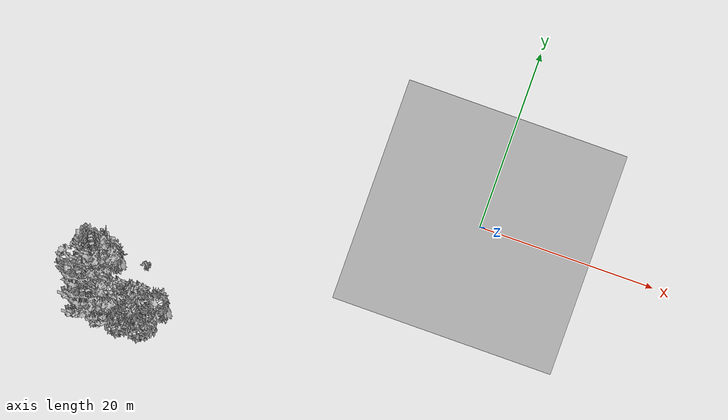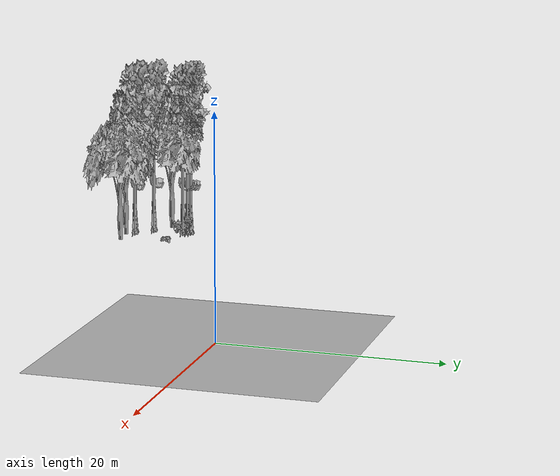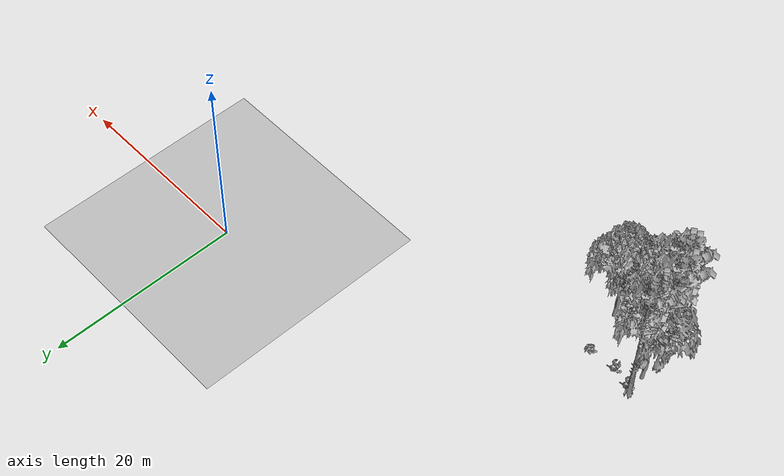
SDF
<sdf version="1.7">
 <world name="default">
  <model name="ground_plane">
   <static>1</static>
   <link name="link">
    <collision name="collision">
     <pose>-50 0 0 0 -0 0</pose>
     <geometry><plane><normal>0 0 1</normal><size>80 80</size></plane></geometry>
     <surface><contact><ode><min_depth>0.01</min_depth><max_vel>0</max_vel></ode></contact></surface>
    </collision>
    <visual name="grass">
     <cast_shadows>0</cast_shadows>
     <geometry>
      <mesh>
       <scale>0.46714285714285714 0.46714285714285714 0.1</scale>
       <uri>file://grass_plane/meshes/grass_plane.dae</uri>
      </mesh>
     </geometry>
    </visual>
   </link>
  </model>
  <model name="Tree 135">
   <static>1</static>
   <pose>-38.273609621396496 -19.29052400912444 0 1.57079 -0 0</pose>
   <link name="link">
    <collision name="collision">
     <geometry><mesh><scale>3.5 5 3.5</scale><uri>model://tree_9/meshes/tree_9.obj</uri></mesh></geometry>
    </collision>
    <visual name="visual">
     <geometry><mesh><scale>3.5 5 3.5</scale><uri>model://tree_9/meshes/tree_9.obj</uri></mesh></geometry>
    </visual>
   </link>
  </model>
  <model name="Tree 164">
   <static>1</static>
   <pose>-31.925173489571886 -20.588643070334705 0 1.57079 -0 0</pose>
   <link name="link">
    <collision name="collision">
     <geometry><mesh><scale>3.5 5 3.5</scale><uri>model://tree_2/meshes/tree_2.obj</uri></mesh></geometry>
    </collision>
    <visual name="visual">
     <geometry><mesh><scale>3.5 5 3.5</scale><uri>model://tree_2/meshes/tree_2.obj</uri></mesh></geometry>
    </visual>
   </link>
  </model>
  <model name="Tree 250">
   <static>1</static>
   <pose>-37.923989996236976 -16.008091663909603 0 1.57079 -0 0</pose>
   <link name="link">
    <collision name="collision">
     <geometry><mesh><scale>3.5 5 3.5</scale><uri>model://tree_9/meshes/tree_9.obj</uri></mesh></geometry>
    </collision>
    <visual name="visual">
     <geometry><mesh><scale>3.5 5 3.5</scale><uri>model://tree_9/meshes/tree_9.obj</uri></mesh></geometry>
    </visual>
   </link>
  </model>
  <model name="Tree 346">
   <static>1</static>
   <pose>-36.686857323209765 -20.807818463732957 0 1.57079 -0 0</pose>
   <link name="link">
    <collision name="collision">
     <geometry><mesh><scale>3.5 5 3.5</scale><uri>model://tree_9/meshes/tree_9.obj</uri></mesh></geometry>
    </collision>
    <visual name="visual">
     <geometry><mesh><scale>3.5 5 3.5</scale><uri>model://tree_9/meshes/tree_9.obj</uri></mesh></geometry>
    </visual>
   </link>
  </model>
  <model name="Tree 356">
   <static>1</static>
   <pose>-38.34498896858936 -15.301312213933251 0 1.57079 -0 0</pose>
   <link name="link">
    <collision name="collision">
     <geometry><mesh><scale>3.5 5 3.5</scale><uri>model://tree_9/meshes/tree_9.obj</uri></mesh></geometry>
    </collision>
    <visual name="visual">
     <geometry><mesh><scale>3.5 5 3.5</scale><uri>model://tree_9/meshes/tree_9.obj</uri></mesh></geometry>
    </visual>
   </link>
  </model>
  <model name="Tree 389">
   <static>1</static>
   <pose>-38.27073543149374 -17.285161498638317 0 1.57079 -0 0</pose>
   <link name="link">
    <collision name="collision">
     <geometry><mesh><scale>3.5 5 3.5</scale><uri>model://tree_2/meshes/tree_2.obj</uri></mesh></geometry>
    </collision>
    <visual name="visual">
     <geometry><mesh><scale>3.5 5 3.5</scale><uri>model://tree_2/meshes/tree_2.obj</uri></mesh></geometry>
    </visual>
   </link>
  </model>
  <model name="Tree 401">
   <static>1</static>
   <pose>-38.23039694298119 -15.605027877854969 0 1.57079 -0 0</pose>
   <link name="link">
    <collision name="collision">
     <geometry><mesh><scale>3.5 5 3.5</scale><uri>model://tree_9/meshes/tree_9.obj</uri></mesh></geometry>
    </collision>
    <visual name="visual">
     <geometry><mesh><scale>3.5 5 3.5</scale><uri>model://tree_9/meshes/tree_9.obj</uri></mesh></geometry>
    </visual>
   </link>
  </model>
  <model name="Tree 428">
   <static>1</static>
   <pose>-37.24051638160462 -20.983334897616686 0 1.57079 -0 0</pose>
   <link name="link">
    <collision name="collision">
     <geometry><mesh><scale>3.5 5 3.5</scale><uri>model://tree_9/meshes/tree_9.obj</uri></mesh></geometry>
    </collision>
    <visual name="visual">
     <geometry><mesh><scale>3.5 5 3.5</scale><uri>model://tree_9/meshes/tree_9.obj</uri></mesh></geometry>
    </visual>
   </link>
  </model>
  <model name="Tree 474">
   <static>1</static>
   <pose>-34.19535836988832 -20.836771267964185 0 1.57079 -0 0</pose>
   <link name="link">
    <collision name="collision">
     <geometry><mesh><scale>3.5 5 3.5</scale><uri>model://tree_2/meshes/tree_2.obj</uri></mesh></geometry>
    </collision>
    <visual name="visual">
     <geometry><mesh><scale>3.5 5 3.5</scale><uri>model://tree_2/meshes/tree_2.obj</uri></mesh></geometry>
    </visual>
   </link>
  </model>
  <model name="Bush 186">
   <static>1</static>
   <pose>-32.957586568490456 -16.126140790864525 0 1.57079 -0 0</pose>
   <link name="link">
    <collision name="collision">
     <geometry><mesh><scale>2 2 2</scale><uri>model://bush_2/meshes/bush_2.obj</uri></mesh></geometry>
     <surface><contact><collide_without_contact>false</collide_without_contact></contact></surface>
    </collision>
    <visual name="visual">
     <geometry><mesh><scale>2 2 2</scale><uri>model://bush_2/meshes/bush_2.obj</uri></mesh></geometry>
    </visual>
   </link>
  </model>
  <model name="Bush 292">
   <static>1</static>
   <pose>-38.037328456397184 -15.467303900238374 0 1.57079 -0 0</pose>
   <link name="link">
    <collision name="collision">
     <geometry><mesh><scale>2 2 2</scale><uri>model://bush_4/meshes/bush_4.obj</uri></mesh></geometry>
     <surface><contact><collide_without_contact>false</collide_without_contact></contact></surface>
    </collision>
    <visual name="visual">
     <geometry><mesh><scale>2 2 2</scale><uri>model://bush_4/meshes/bush_4.obj</uri></mesh></geometry>
    </visual>
   </link>
  </model>
  <model name="Bush 505">
   <static>1</static>
   <pose>-36.023895747949545 -15.97964870555365 0 1.57079 -0 0</pose>
   <link name="link">
    <collision name="collision">
     <geometry><mesh><scale>2 2 2</scale><uri>model://bush_4/meshes/bush_4.obj</uri></mesh></geometry>
     <surface><contact><collide_without_contact>false</collide_without_contact></contact></surface>
    </collision>
    <visual name="visual">
     <geometry><mesh><scale>2 2 2</scale><uri>model://bush_4/meshes/bush_4.obj</uri></mesh></geometry>
    </visual>
   </link>
  </model>
 </world>
</sdf>
